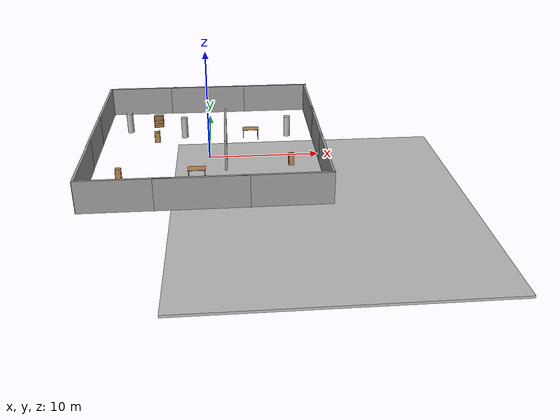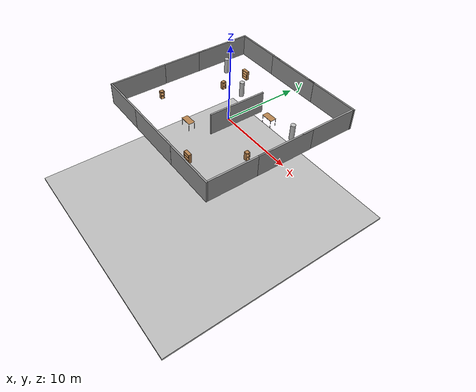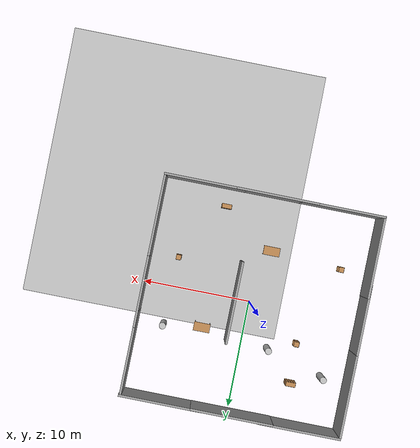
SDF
<sdf version="1.6">
 <world name="default">
  <light name="sun" type="directional">
   <cast_shadows>0</cast_shadows>
   <pose>0 0 10 0 -0 0</pose>
   <diffuse>0.8 0.8 0.8 1</diffuse>
   <specular>0.1 0.1 0.1 1</specular>
   <attenuation>
    <range>1000</range>
    <constant>0.9</constant>
    <linear>0.01</linear>
    <quadratic>0.001</quadratic>
   </attenuation>
   <direction>-0.5 0.5 -1</direction>
  </light>
  <model name="mud_box">
   <static>1</static>
   <link name="link">
    <collision name="collision"><geometry><box><size>90 75 0.2</size></box></geometry></collision>
    <visual name="visual_1">
     <pose>-2 2.5 0 0 -0 0</pose>
     <cast_shadows>0</cast_shadows>
     <geometry><box><size>24 25 0.2</size></box></geometry>
     <material>
      <script>
       <uri>model://mud_box/materials/scripts</uri>
       <uri>model://mud_box/materials/textures</uri>
       <name>vrc/mud</name>
      </script>
     </material>
    </visual>
   </link>
   <pose>11 -12 -0.1 0 -0 0</pose>
  </model>
  <gravity>0 0 -9.8</gravity>
  <magnetic_field>6e-06 2.3e-05 -4.2e-05</magnetic_field>
  <atmosphere type="adiabatic"/>
  <physics name="default_physics" default="0" type="ode">
   <max_step_size>0.001</max_step_size>
   <real_time_factor>1</real_time_factor>
   <real_time_update_rate>1000</real_time_update_rate>
  </physics>
  <scene><ambient>0.4 0.4 0.4 1</ambient><background>0.7 0.7 0.7 1</background><shadows>0</shadows></scene>
  <spherical_coordinates>
   <surface_model>EARTH_WGS84</surface_model>
   <latitude_deg>0</latitude_deg>
   <longitude_deg>0</longitude_deg>
   <elevation>0</elevation>
   <heading_deg>0</heading_deg>
  </spherical_coordinates>
  <model name="NamedLocations">
   <static>1</static>
   <link name="DefaultStart"><pose>8.5 0 0 0 -0 3.14</pose></link>
  </model>
  <model name="grey_wall">
   <static>1</static>
   <link name="link">
    <pose>0 0 1.4 0 -0 0</pose>
    <collision name="collision"><geometry><box><size>7.5 0.2 2.8</size></box></geometry></collision>
    <visual name="visual">
     <cast_shadows>0</cast_shadows>
     <geometry><box><size>7.5 0.2 2.8</size></box></geometry>
     <material>
      <script>
       <uri>model://grey_wall/materials/scripts</uri>
       <uri>model://grey_wall/materials/textures</uri>
       <name>vrc/grey_wall</name>
      </script>
     </material>
    </visual>
   </link>
   <pose>-0.430951 -10.0176 0.45 0 -0 0</pose>
  </model>
  <model name="grey_wall_0">
   <static>1</static>
   <link name="link">
    <pose>0 0 1.4 0 -0 0</pose>
    <collision name="collision"><geometry><box><size>7.5 0.2 2.8</size></box></geometry></collision>
    <visual name="visual">
     <cast_shadows>0</cast_shadows>
     <geometry><box><size>7.5 0.2 2.8</size></box></geometry>
     <material>
      <script>
       <uri>model://grey_wall/materials/scripts</uri>
       <uri>model://grey_wall/materials/textures</uri>
       <name>vrc/grey_wall</name>
      </script>
     </material>
    </visual>
   </link>
   <pose>-6.43801 -10.0068 0.45 0 -0 0</pose>
  </model>
  <model name="grey_wall_1">
   <static>1</static>
   <link name="link">
    <pose>0 0 1.4 0 -0 0</pose>
    <collision name="collision"><geometry><box><size>7.5 0.2 2.8</size></box></geometry></collision>
    <visual name="visual">
     <cast_shadows>0</cast_shadows>
     <geometry><box><size>7.5 0.2 2.8</size></box></geometry>
     <material>
      <script>
       <uri>model://grey_wall/materials/scripts</uri>
       <uri>model://grey_wall/materials/textures</uri>
       <name>vrc/grey_wall</name>
      </script>
     </material>
    </visual>
   </link>
   <pose>-0.187528 10.1006 0.45 0 -0 0</pose>
  </model>
  <model name="grey_wall_2">
   <static>1</static>
   <link name="link">
    <pose>0 0 1.4 0 -0 0</pose>
    <collision name="collision"><geometry><box><size>7.5 0.2 2.8</size></box></geometry></collision>
    <visual name="visual">
     <cast_shadows>0</cast_shadows>
     <geometry><box><size>7.5 0.2 2.8</size></box></geometry>
     <material>
      <script>
       <uri>model://grey_wall/materials/scripts</uri>
       <uri>model://grey_wall/materials/textures</uri>
       <name>vrc/grey_wall</name>
      </script>
     </material>
    </visual>
   </link>
   <pose>-6.34448 10.1286 0.45 0 -0 0</pose>
  </model>
  <model name="grey_wall_3">
   <static>1</static>
   <link name="link">
    <pose>0 0 1.4 0 -0 0</pose>
    <collision name="collision"><geometry><box><size>7.5 0.2 2.8</size></box></geometry></collision>
    <visual name="visual">
     <cast_shadows>0</cast_shadows>
     <geometry><box><size>7.5 0.2 2.8</size></box></geometry>
     <material>
      <script>
       <uri>model://grey_wall/materials/scripts</uri>
       <uri>model://grey_wall/materials/textures</uri>
       <name>vrc/grey_wall</name>
      </script>
     </material>
    </visual>
   </link>
   <pose>-10.0924 -6.35537 0.45 0 0 -1.57741</pose>
  </model>
  <model name="grey_wall_3_clone">
   <static>1</static>
   <link name="link">
    <pose>0 0 1.4 0 -0 0</pose>
    <collision name="collision"><geometry><box><size>7.5 0.2 2.8</size></box></geometry></collision>
    <visual name="visual">
     <cast_shadows>0</cast_shadows>
     <geometry><box><size>7.5 0.2 2.8</size></box></geometry>
     <material>
      <script>
       <uri>model://grey_wall/materials/scripts</uri>
       <uri>model://grey_wall/materials/textures</uri>
       <name>vrc/grey_wall</name>
      </script>
     </material>
    </visual>
   </link>
   <pose>-10.0385 6.29221 0.45 0 0 -1.57741</pose>
  </model>
  <model name="grey_wall_3_clone_0">
   <static>1</static>
   <link name="link">
    <pose>0 0 1.4 0 -0 0</pose>
    <collision name="collision"><geometry><box><size>7.5 0.2 2.8</size></box></geometry></collision>
    <visual name="visual">
     <cast_shadows>0</cast_shadows>
     <geometry><box><size>7.5 0.2 2.8</size></box></geometry>
     <material>
      <script>
       <uri>model://grey_wall/materials/scripts</uri>
       <uri>model://grey_wall/materials/textures</uri>
       <name>vrc/grey_wall</name>
      </script>
     </material>
    </visual>
   </link>
   <pose>-10.0852 -0.090618 0.45 0 0 -1.57741</pose>
  </model>
  <model name="grey_wall_clone">
   <static>1</static>
   <link name="link">
    <pose>0 0 1.4 0 -0 0</pose>
    <collision name="collision"><geometry><box><size>7.5 0.2 2.8</size></box></geometry></collision>
    <visual name="visual">
     <cast_shadows>0</cast_shadows>
     <geometry><box><size>7.5 0.2 2.8</size></box></geometry>
     <material>
      <script>
       <uri>model://grey_wall/materials/scripts</uri>
       <uri>model://grey_wall/materials/textures</uri>
       <name>vrc/grey_wall</name>
      </script>
     </material>
    </visual>
   </link>
   <pose>6.15839 -10.0125 0.45 0 -0 0</pose>
  </model>
  <model name="grey_wall_3_clone_1">
   <static>1</static>
   <link name="link">
    <pose>0 0 1.4 0 -0 0</pose>
    <collision name="collision"><geometry><box><size>7.5 0.2 2.8</size></box></geometry></collision>
    <visual name="visual">
     <cast_shadows>0</cast_shadows>
     <geometry><box><size>7.5 0.2 2.8</size></box></geometry>
     <material>
      <script>
       <uri>model://grey_wall/materials/scripts</uri>
       <uri>model://grey_wall/materials/textures</uri>
       <name>vrc/grey_wall</name>
      </script>
     </material>
    </visual>
   </link>
   <pose>9.81082 -6.30361 0.45 0 0 -1.57741</pose>
  </model>
  <model name="grey_wall_3_clone_2">
   <static>1</static>
   <link name="link">
    <pose>0 0 1.4 0 -0 0</pose>
    <collision name="collision"><geometry><box><size>7.5 0.2 2.8</size></box></geometry></collision>
    <visual name="visual">
     <cast_shadows>0</cast_shadows>
     <geometry><box><size>7.5 0.2 2.8</size></box></geometry>
     <material>
      <script>
       <uri>model://grey_wall/materials/scripts</uri>
       <uri>model://grey_wall/materials/textures</uri>
       <name>vrc/grey_wall</name>
      </script>
     </material>
    </visual>
   </link>
   <pose>9.85875 0.188279 0.45 0 0 -1.57741</pose>
  </model>
  <model name="grey_wall_3_clone_3">
   <static>1</static>
   <link name="link">
    <pose>0 0 1.4 0 -0 0</pose>
    <collision name="collision"><geometry><box><size>7.5 0.2 2.8</size></box></geometry></collision>
    <visual name="visual">
     <cast_shadows>0</cast_shadows>
     <geometry><box><size>7.5 0.2 2.8</size></box></geometry>
     <material>
      <script>
       <uri>model://grey_wall/materials/scripts</uri>
       <uri>model://grey_wall/materials/textures</uri>
       <name>vrc/grey_wall</name>
      </script>
     </material>
    </visual>
   </link>
   <pose>9.88561 6.25818 0.45 0 0 -1.57741</pose>
  </model>
  <model name="grey_wall_1_clone">
   <static>1</static>
   <link name="link">
    <pose>0 0 1.4 0 -0 0</pose>
    <collision name="collision"><geometry><box><size>7.5 0.2 2.8</size></box></geometry></collision>
    <visual name="visual">
     <cast_shadows>0</cast_shadows>
     <geometry><box><size>7.5 0.2 2.8</size></box></geometry>
     <material>
      <script>
       <uri>model://grey_wall/materials/scripts</uri>
       <uri>model://grey_wall/materials/textures</uri>
       <name>vrc/grey_wall</name>
      </script>
     </material>
    </visual>
   </link>
   <pose>6.32176 10.1148 0.45 0 -0 0</pose>
  </model>
  <model name="grey_wall_3_clone_0_clone">
   <static>1</static>
   <link name="link">
    <pose>0 0 1.4 0 -0 0</pose>
    <collision name="collision"><geometry><box><size>7.5 0.2 2.8</size></box></geometry></collision>
    <visual name="visual">
     <cast_shadows>0</cast_shadows>
     <geometry><box><size>7.5 0.2 2.8</size></box></geometry>
     <material>
      <script>
       <uri>model://grey_wall/materials/scripts</uri>
       <uri>model://grey_wall/materials/textures</uri>
       <name>vrc/grey_wall</name>
      </script>
     </material>
    </visual>
   </link>
   <pose>1.52165 0.080496 0.45 0 0 -1.57741</pose>
  </model>
  <model name="cabinet">
   <static>1</static>
   <link name="cabinet_bottom_plate">
    <inertial>
     <pose>0 0 -1 0 -0 0</pose>
     <inertia><ixx>2.05</ixx><ixy>0</ixy><ixz>0</ixz><iyy>2.05</iyy><iyz>0</iyz><izz>2.05</izz></inertia>
     <mass>25</mass>
    </inertial>
    <collision name="cabinet_bottom_plate_geom">
     <pose>0 0 0.01 0 -0 0</pose>
     <geometry><box><size>0.45 0.45 0.02</size></box></geometry>
    </collision>
    <visual name="cabinet_bottom_plate_geom_visual">
     <pose>0 0 0.01 0 -0 0</pose>
     <geometry><box><size>0.45 0.45 0.02</size></box></geometry>
     <material>
      <script><uri>file://media/materials/scripts/gazebo.material</uri><name>Gazebo/Wood</name></script>
     </material>
    </visual>
    <collision name="cabinet_bottom_plate_geom_cabinet_back_plate">
     <pose>0.235 0 0.51 0 -0 0</pose>
     <geometry><box><size>0.02 0.45 1.02</size></box></geometry>
    </collision>
    <visual name="cabinet_bottom_plate_geom_cabinet_back_plate_visual">
     <pose>0.235 0 0.51 0 -0 0</pose>
     <geometry><box><size>0.02 0.45 1.02</size></box></geometry>
     <material>
      <script><uri>file://media/materials/scripts/gazebo.material</uri><name>Gazebo/Wood</name></script>
     </material>
    </visual>
    <collision name="cabinet_bottom_plate_geom_cabinet_left_plate">
     <pose>0 0.235 0.51 0 -0 0</pose>
     <geometry><box><size>0.45 0.02 1.02</size></box></geometry>
    </collision>
    <visual name="cabinet_bottom_plate_geom_cabinet_left_plate_visual">
     <pose>0 0.235 0.51 0 -0 0</pose>
     <geometry><box><size>0.45 0.02 1.02</size></box></geometry>
     <material>
      <script><uri>file://media/materials/scripts/gazebo.material</uri><name>Gazebo/Wood</name></script>
     </material>
    </visual>
    <collision name="cabinet_bottom_plate_geom_cabinet_middle_plate">
     <pose>0 0 0.51 0 -0 0</pose>
     <geometry><box><size>0.45 0.45 0.02</size></box></geometry>
    </collision>
    <visual name="cabinet_bottom_plate_geom_cabinet_middle_plate_visual">
     <pose>0 0 0.51 0 -0 0</pose>
     <geometry><box><size>0.45 0.45 0.02</size></box></geometry>
     <material>
      <script><uri>file://media/materials/scripts/gazebo.material</uri><name>Gazebo/Wood</name></script>
     </material>
    </visual>
    <collision name="cabinet_bottom_plate_geom_cabinet_right_plate">
     <pose>0 -0.235 0.51 0 -0 0</pose>
     <geometry><box><size>0.45 0.02 1.02</size></box></geometry>
    </collision>
    <visual name="cabinet_bottom_plate_geom_cabinet_right_plate_visual">
     <pose>0 -0.235 0.51 0 -0 0</pose>
     <geometry><box><size>0.45 0.02 1.02</size></box></geometry>
     <material>
      <script><uri>file://media/materials/scripts/gazebo.material</uri><name>Gazebo/Wood</name></script>
     </material>
    </visual>
    <collision name="cabinet_bottom_plate_geom_cabinet_top_plate">
     <pose>0 0 1.01 0 -0 0</pose>
     <geometry><box><size>0.45 0.45 0.02</size></box></geometry>
    </collision>
    <visual name="cabinet_bottom_plate_geom_cabinet_top_plate_visual">
     <pose>0 0 1.01 0 -0 0</pose>
     <geometry><box><size>0.45 0.45 0.02</size></box></geometry>
     <material>
      <script><uri>file://media/materials/scripts/gazebo.material</uri><name>Gazebo/Wood</name></script>
     </material>
    </visual>
   </link>
   <pose>-4.91761 2.85891 0.45 0 -0 3.14</pose>
  </model>
  <model name="bookshelf">
   <static>1</static>
   <link name="link">
    <inertial><mass>1</mass></inertial>
    <collision name="back">
     <pose>0 0.005 0.6 0 -0 0</pose>
     <geometry><box><size>0.9 0.01 1.2</size></box></geometry>
    </collision>
    <visual name="visual1">
     <pose>0 0.005 0.6 0 -0 0</pose>
     <geometry><box><size>0.9 0.01 1.2</size></box></geometry>
     <material>
      <script><uri>file://media/materials/scripts/gazebo.material</uri><name>Gazebo/Wood</name></script>
     </material>
    </visual>
    <collision name="left_side">
     <pose>0.45 -0.195 0.6 0 -0 0</pose>
     <geometry><box><size>0.02 0.4 1.2</size></box></geometry>
    </collision>
    <visual name="visual2">
     <pose>0.45 -0.195 0.6 0 -0 0</pose>
     <geometry><box><size>0.02 0.4 1.2</size></box></geometry>
     <material>
      <script><uri>file://media/materials/scripts/gazebo.material</uri><name>Gazebo/Wood</name></script>
     </material>
    </visual>
    <collision name="right_side">
     <pose>-0.45 -0.195 0.6 0 -0 0</pose>
     <geometry><box><size>0.02 0.4 1.2</size></box></geometry>
    </collision>
    <visual name="visual3">
     <pose>-0.45 -0.195 0.6 0 -0 0</pose>
     <geometry><box><size>0.02 0.4 1.2</size></box></geometry>
     <material>
      <script><uri>file://media/materials/scripts/gazebo.material</uri><name>Gazebo/Wood</name></script>
     </material>
    </visual>
    <collision name="bottom">
     <pose>0 -0.195 0.03 0 -0 0</pose>
     <geometry><box><size>0.88 0.4 0.06</size></box></geometry>
    </collision>
    <visual name="visual4">
     <pose>0 -0.195 0.03 0 -0 0</pose>
     <geometry><box><size>0.88 0.4 0.06</size></box></geometry>
     <material>
      <script><uri>file://media/materials/scripts/gazebo.material</uri><name>Gazebo/Wood</name></script>
     </material>
    </visual>
    <collision name="top">
     <pose>0 -0.195 1.19 0 -0 0</pose>
     <geometry><box><size>0.88 0.4 0.02</size></box></geometry>
    </collision>
    <visual name="visual5">
     <pose>0 -0.195 1.19 0 -0 0</pose>
     <geometry><box><size>0.88 0.4 0.02</size></box></geometry>
     <material>
      <script><uri>file://media/materials/scripts/gazebo.material</uri><name>Gazebo/Wood</name></script>
     </material>
    </visual>
    <collision name="low_shelf">
     <pose>0 -0.195 0.43 0 -0 0</pose>
     <geometry><box><size>0.88 0.4 0.02</size></box></geometry>
    </collision>
    <visual name="visual6">
     <pose>0 -0.195 0.43 0 -0 0</pose>
     <geometry><box><size>0.88 0.4 0.02</size></box></geometry>
     <material>
      <script><uri>file://media/materials/scripts/gazebo.material</uri><name>Gazebo/Wood</name></script>
     </material>
    </visual>
    <collision name="high_shelf">
     <pose>0 -0.195 0.8 0 -0 0</pose>
     <geometry><box><size>0.88 0.4 0.02</size></box></geometry>
    </collision>
    <visual name="visual7">
     <pose>0 -0.195 0.8 0 -0 0</pose>
     <geometry><box><size>0.88 0.4 0.02</size></box></geometry>
     <material>
      <script><uri>file://media/materials/scripts/gazebo.material</uri><name>Gazebo/Wood</name></script>
     </material>
    </visual>
   </link>
   <pose>3.81369 -8.10094 0.45 0 -0 0</pose>
  </model>
  <model name="table">
   <static>1</static>
   <link name="link">
    <collision name="surface">
     <pose>0 0 1 0 -0 0</pose>
     <geometry><box><size>1.5 0.8 0.03</size></box></geometry>
     <surface><friction><ode><mu>0.6</mu><mu2>0.6</mu2></ode></friction></surface>
    </collision>
    <visual name="visual1">
     <pose>0 0 1 0 -0 0</pose>
     <geometry><box><size>1.5 0.8 0.03</size></box></geometry>
     <material>
      <script><uri>file://media/materials/scripts/gazebo.material</uri><name>Gazebo/Wood</name></script>
     </material>
    </visual>
    <collision name="front_left_leg">
     <pose>0.68 0.38 0.5 0 -0 0</pose>
     <geometry><cylinder><radius>0.02</radius><length>1</length></cylinder></geometry>
    </collision>
    <visual name="front_left_leg">
     <pose>0.68 0.38 0.5 0 -0 0</pose>
     <geometry><cylinder><radius>0.02</radius><length>1</length></cylinder></geometry>
     <material>
      <script>
       <uri>model://brick_box_0.5x0.5x3/materials/scripts</uri>
       <uri>model://brick_box_0.5x0.5x3/materials/textures</uri>
       <name>BrickBox/Diffuse</name>
      </script>
     </material>
    </visual>
    <collision name="front_right_leg">
     <pose>0.68 -0.38 0.5 0 -0 0</pose>
     <geometry><cylinder><radius>0.02</radius><length>1</length></cylinder></geometry>
    </collision>
    <visual name="front_right_leg">
     <pose>0.68 -0.38 0.5 0 -0 0</pose>
     <geometry><cylinder><radius>0.02</radius><length>1</length></cylinder></geometry>
     <material>
      <script>
       <uri>model://brick_box_0.5x0.5x3/materials/scripts</uri>
       <uri>model://brick_box_0.5x0.5x3/materials/textures</uri>
       <name>BrickBox/Diffuse</name>
      </script>
     </material>
    </visual>
    <collision name="back_right_leg">
     <pose>-0.68 -0.38 0.5 0 -0 0</pose>
     <geometry><cylinder><radius>0.02</radius><length>1</length></cylinder></geometry>
    </collision>
    <visual name="back_right_leg">
     <pose>-0.68 -0.38 0.5 0 -0 0</pose>
     <geometry><cylinder><radius>0.02</radius><length>1</length></cylinder></geometry>
     <material>
      <script>
       <uri>model://brick_box_0.5x0.5x3/materials/scripts</uri>
       <uri>model://brick_box_0.5x0.5x3/materials/textures</uri>
       <name>BrickBox/Diffuse</name>
      </script>
     </material>
    </visual>
    <collision name="back_left_leg">
     <pose>-0.68 0.38 0.5 0 -0 0</pose>
     <geometry><cylinder><radius>0.02</radius><length>1</length></cylinder></geometry>
    </collision>
    <visual name="back_left_leg">
     <pose>-0.68 0.38 0.5 0 -0 0</pose>
     <geometry><cylinder><radius>0.02</radius><length>1</length></cylinder></geometry>
     <material>
      <script>
       <uri>model://brick_box_0.5x0.5x3/materials/scripts</uri>
       <uri>model://brick_box_0.5x0.5x3/materials/textures</uri>
       <name>BrickBox/Diffuse</name>
      </script>
     </material>
    </visual>
   </link>
   <pose>3.90628 3.0115 0.45 0 -0 0</pose>
  </model>
  <model name="bookshelf_0">
   <static>1</static>
   <link name="link">
    <inertial><mass>1</mass></inertial>
    <collision name="back">
     <pose>0 0.005 0.6 0 -0 0</pose>
     <geometry><box><size>0.9 0.01 1.2</size></box></geometry>
    </collision>
    <visual name="visual1">
     <pose>0 0.005 0.6 0 -0 0</pose>
     <geometry><box><size>0.9 0.01 1.2</size></box></geometry>
     <material>
      <script><uri>file://media/materials/scripts/gazebo.material</uri><name>Gazebo/Wood</name></script>
     </material>
    </visual>
    <collision name="left_side">
     <pose>0.45 -0.195 0.6 0 -0 0</pose>
     <geometry><box><size>0.02 0.4 1.2</size></box></geometry>
    </collision>
    <visual name="visual2">
     <pose>0.45 -0.195 0.6 0 -0 0</pose>
     <geometry><box><size>0.02 0.4 1.2</size></box></geometry>
     <material>
      <script><uri>file://media/materials/scripts/gazebo.material</uri><name>Gazebo/Wood</name></script>
     </material>
    </visual>
    <collision name="right_side">
     <pose>-0.45 -0.195 0.6 0 -0 0</pose>
     <geometry><box><size>0.02 0.4 1.2</size></box></geometry>
    </collision>
    <visual name="visual3">
     <pose>-0.45 -0.195 0.6 0 -0 0</pose>
     <geometry><box><size>0.02 0.4 1.2</size></box></geometry>
     <material>
      <script><uri>file://media/materials/scripts/gazebo.material</uri><name>Gazebo/Wood</name></script>
     </material>
    </visual>
    <collision name="bottom">
     <pose>0 -0.195 0.03 0 -0 0</pose>
     <geometry><box><size>0.88 0.4 0.06</size></box></geometry>
    </collision>
    <visual name="visual4">
     <pose>0 -0.195 0.03 0 -0 0</pose>
     <geometry><box><size>0.88 0.4 0.06</size></box></geometry>
     <material>
      <script><uri>file://media/materials/scripts/gazebo.material</uri><name>Gazebo/Wood</name></script>
     </material>
    </visual>
    <collision name="top">
     <pose>0 -0.195 1.19 0 -0 0</pose>
     <geometry><box><size>0.88 0.4 0.02</size></box></geometry>
    </collision>
    <visual name="visual5">
     <pose>0 -0.195 1.19 0 -0 0</pose>
     <geometry><box><size>0.88 0.4 0.02</size></box></geometry>
     <material>
      <script><uri>file://media/materials/scripts/gazebo.material</uri><name>Gazebo/Wood</name></script>
     </material>
    </visual>
    <collision name="low_shelf">
     <pose>0 -0.195 0.43 0 -0 0</pose>
     <geometry><box><size>0.88 0.4 0.02</size></box></geometry>
    </collision>
    <visual name="visual6">
     <pose>0 -0.195 0.43 0 -0 0</pose>
     <geometry><box><size>0.88 0.4 0.02</size></box></geometry>
     <material>
      <script><uri>file://media/materials/scripts/gazebo.material</uri><name>Gazebo/Wood</name></script>
     </material>
    </visual>
    <collision name="high_shelf">
     <pose>0 -0.195 0.8 0 -0 0</pose>
     <geometry><box><size>0.88 0.4 0.02</size></box></geometry>
    </collision>
    <visual name="visual7">
     <pose>0 -0.195 0.8 0 -0 0</pose>
     <geometry><box><size>0.88 0.4 0.02</size></box></geometry>
     <material>
      <script><uri>file://media/materials/scripts/gazebo.material</uri><name>Gazebo/Wood</name></script>
     </material>
    </visual>
   </link>
   <pose>-5.05955 6.72058 0.45 0 -0 0</pose>
  </model>
  <model name="cabinet_0">
   <static>1</static>
   <link name="cabinet_bottom_plate">
    <inertial>
     <pose>0 0 -1 0 -0 0</pose>
     <inertia><ixx>2.05</ixx><ixy>0</ixy><ixz>0</ixz><iyy>2.05</iyy><iyz>0</iyz><izz>2.05</izz></inertia>
     <mass>25</mass>
    </inertial>
    <collision name="cabinet_bottom_plate_geom">
     <pose>0 0 0.01 0 -0 0</pose>
     <geometry><box><size>0.45 0.45 0.02</size></box></geometry>
    </collision>
    <visual name="cabinet_bottom_plate_geom_visual">
     <pose>0 0 0.01 0 -0 0</pose>
     <geometry><box><size>0.45 0.45 0.02</size></box></geometry>
     <material>
      <script><uri>file://media/materials/scripts/gazebo.material</uri><name>Gazebo/Wood</name></script>
     </material>
    </visual>
    <collision name="cabinet_bottom_plate_geom_cabinet_back_plate">
     <pose>0.235 0 0.51 0 -0 0</pose>
     <geometry><box><size>0.02 0.45 1.02</size></box></geometry>
    </collision>
    <visual name="cabinet_bottom_plate_geom_cabinet_back_plate_visual">
     <pose>0.235 0 0.51 0 -0 0</pose>
     <geometry><box><size>0.02 0.45 1.02</size></box></geometry>
     <material>
      <script><uri>file://media/materials/scripts/gazebo.material</uri><name>Gazebo/Wood</name></script>
     </material>
    </visual>
    <collision name="cabinet_bottom_plate_geom_cabinet_left_plate">
     <pose>0 0.235 0.51 0 -0 0</pose>
     <geometry><box><size>0.45 0.02 1.02</size></box></geometry>
    </collision>
    <visual name="cabinet_bottom_plate_geom_cabinet_left_plate_visual">
     <pose>0 0.235 0.51 0 -0 0</pose>
     <geometry><box><size>0.45 0.02 1.02</size></box></geometry>
     <material>
      <script><uri>file://media/materials/scripts/gazebo.material</uri><name>Gazebo/Wood</name></script>
     </material>
    </visual>
    <collision name="cabinet_bottom_plate_geom_cabinet_middle_plate">
     <pose>0 0 0.51 0 -0 0</pose>
     <geometry><box><size>0.45 0.45 0.02</size></box></geometry>
    </collision>
    <visual name="cabinet_bottom_plate_geom_cabinet_middle_plate_visual">
     <pose>0 0 0.51 0 -0 0</pose>
     <geometry><box><size>0.45 0.45 0.02</size></box></geometry>
     <material>
      <script><uri>file://media/materials/scripts/gazebo.material</uri><name>Gazebo/Wood</name></script>
     </material>
    </visual>
    <collision name="cabinet_bottom_plate_geom_cabinet_right_plate">
     <pose>0 -0.235 0.51 0 -0 0</pose>
     <geometry><box><size>0.45 0.02 1.02</size></box></geometry>
    </collision>
    <visual name="cabinet_bottom_plate_geom_cabinet_right_plate_visual">
     <pose>0 -0.235 0.51 0 -0 0</pose>
     <geometry><box><size>0.45 0.02 1.02</size></box></geometry>
     <material>
      <script><uri>file://media/materials/scripts/gazebo.material</uri><name>Gazebo/Wood</name></script>
     </material>
    </visual>
    <collision name="cabinet_bottom_plate_geom_cabinet_top_plate">
     <pose>0 0 1.01 0 -0 0</pose>
     <geometry><box><size>0.45 0.45 0.02</size></box></geometry>
    </collision>
    <visual name="cabinet_bottom_plate_geom_cabinet_top_plate_visual">
     <pose>0 0 1.01 0 -0 0</pose>
     <geometry><box><size>0.45 0.45 0.02</size></box></geometry>
     <material>
      <script><uri>file://media/materials/scripts/gazebo.material</uri><name>Gazebo/Wood</name></script>
     </material>
    </visual>
   </link>
   <pose>-7.60906 -4.6363 0.45 0 -0 3.14</pose>
  </model>
  <model name="cylinder_gf_1">
   <static>1</static>
   <pose>-2.36883 3.8194 0.45 0 -0 0</pose>
   <link name="link">
    <pose>0 0 1 0 -0 0</pose>
    <inertial>
     <mass>100</mass>
     <inertia>
      <ixx>0.166667</ixx>
      <ixy>0</ixy>
      <ixz>0</ixz>
      <iyy>0.166667</iyy>
      <iyz>0</iyz>
      <izz>0.166667</izz>
     </inertia>
    </inertial>
    <collision name="collision">
     <geometry><cylinder><radius>0.3</radius><length>2</length></cylinder></geometry>
    </collision>
    <visual name="visual">
     <geometry><cylinder><radius>0.3</radius><length>2</length></cylinder></geometry>
     <material>
      <script>
       <uri>model://brick_box_0.5x0.5x3/materials/scripts</uri>
       <uri>model://brick_box_0.5x0.5x3/materials/textures</uri>
       <name>BrickBox/Diffuse</name>
      </script>
     </material>
    </visual>
   </link>
  </model>
  <model name="cylinder_gf">
   <static>1</static>
   <pose>7.43366 3.42375 0.45 0 -0 0</pose>
   <link name="link">
    <pose>0 0 1 0 -0 0</pose>
    <inertial>
     <mass>100</mass>
     <inertia>
      <ixx>0.166667</ixx>
      <ixy>0</ixy>
      <ixz>0</ixz>
      <iyy>0.166667</iyy>
      <iyz>0</iyz>
      <izz>0.166667</izz>
     </inertia>
    </inertial>
    <collision name="collision">
     <geometry><cylinder><radius>0.3</radius><length>2</length></cylinder></geometry>
    </collision>
    <visual name="visual">
     <geometry><cylinder><radius>0.3</radius><length>2</length></cylinder></geometry>
     <material>
      <script>
       <uri>model://brick_box_0.5x0.5x3/materials/scripts</uri>
       <uri>model://brick_box_0.5x0.5x3/materials/textures</uri>
       <name>BrickBox/Diffuse</name>
      </script>
     </material>
    </visual>
   </link>
  </model>
  <model name="cylinder_gf_0">
   <static>1</static>
   <pose>-7.71707 5.42121 0.45 0 -0 0</pose>
   <link name="link">
    <pose>0 0 1 0 -0 0</pose>
    <inertial>
     <mass>100</mass>
     <inertia>
      <ixx>0.166667</ixx>
      <ixy>0</ixy>
      <ixz>0</ixz>
      <iyy>0.166667</iyy>
      <iyz>0</iyz>
      <izz>0.166667</izz>
     </inertia>
    </inertial>
    <collision name="collision">
     <geometry><cylinder><radius>0.3</radius><length>2</length></cylinder></geometry>
    </collision>
    <visual name="visual">
     <geometry><cylinder><radius>0.3</radius><length>2</length></cylinder></geometry>
     <material>
      <script>
       <uri>model://brick_box_0.5x0.5x3/materials/scripts</uri>
       <uri>model://brick_box_0.5x0.5x3/materials/textures</uri>
       <name>BrickBox/Diffuse</name>
      </script>
     </material>
    </visual>
   </link>
  </model>
  <model name="table_0">
   <static>1</static>
   <link name="link">
    <collision name="surface">
     <pose>0 0 1 0 -0 0</pose>
     <geometry><box><size>1.5 0.8 0.03</size></box></geometry>
     <surface><friction><ode><mu>0.6</mu><mu2>0.6</mu2></ode></friction></surface>
    </collision>
    <visual name="visual1">
     <pose>0 0 1 0 -0 0</pose>
     <geometry><box><size>1.5 0.8 0.03</size></box></geometry>
     <material>
      <script><uri>file://media/materials/scripts/gazebo.material</uri><name>Gazebo/Wood</name></script>
     </material>
    </visual>
    <collision name="front_left_leg">
     <pose>0.68 0.38 0.5 0 -0 0</pose>
     <geometry><cylinder><radius>0.02</radius><length>1</length></cylinder></geometry>
    </collision>
    <visual name="front_left_leg">
     <pose>0.68 0.38 0.5 0 -0 0</pose>
     <geometry><cylinder><radius>0.02</radius><length>1</length></cylinder></geometry>
     <material>
      <script>
       <uri>model://brick_box_0.5x0.5x3/materials/scripts</uri>
       <uri>model://brick_box_0.5x0.5x3/materials/textures</uri>
       <name>BrickBox/Diffuse</name>
      </script>
     </material>
    </visual>
    <collision name="front_right_leg">
     <pose>0.68 -0.38 0.5 0 -0 0</pose>
     <geometry><cylinder><radius>0.02</radius><length>1</length></cylinder></geometry>
    </collision>
    <visual name="front_right_leg">
     <pose>0.68 -0.38 0.5 0 -0 0</pose>
     <geometry><cylinder><radius>0.02</radius><length>1</length></cylinder></geometry>
     <material>
      <script>
       <uri>model://brick_box_0.5x0.5x3/materials/scripts</uri>
       <uri>model://brick_box_0.5x0.5x3/materials/textures</uri>
       <name>BrickBox/Diffuse</name>
      </script>
     </material>
    </visual>
    <collision name="back_right_leg">
     <pose>-0.68 -0.38 0.5 0 -0 0</pose>
     <geometry><cylinder><radius>0.02</radius><length>1</length></cylinder></geometry>
    </collision>
    <visual name="back_right_leg">
     <pose>-0.68 -0.38 0.5 0 -0 0</pose>
     <geometry><cylinder><radius>0.02</radius><length>1</length></cylinder></geometry>
     <material>
      <script>
       <uri>model://brick_box_0.5x0.5x3/materials/scripts</uri>
       <uri>model://brick_box_0.5x0.5x3/materials/textures</uri>
       <name>BrickBox/Diffuse</name>
      </script>
     </material>
    </visual>
    <collision name="back_left_leg">
     <pose>-0.68 0.38 0.5 0 -0 0</pose>
     <geometry><cylinder><radius>0.02</radius><length>1</length></cylinder></geometry>
    </collision>
    <visual name="back_left_leg">
     <pose>-0.68 0.38 0.5 0 -0 0</pose>
     <geometry><cylinder><radius>0.02</radius><length>1</length></cylinder></geometry>
     <material>
      <script>
       <uri>model://brick_box_0.5x0.5x3/materials/scripts</uri>
       <uri>model://brick_box_0.5x0.5x3/materials/textures</uri>
       <name>BrickBox/Diffuse</name>
      </script>
     </material>
    </visual>
   </link>
   <pose>-1.01465 -5.05884 0.45 0 -0 0</pose>
  </model>
  <model name="cabinet_clone">
   <static>1</static>
   <link name="cabinet_bottom_plate">
    <inertial>
     <pose>0 0 -1 0 -0 0</pose>
     <inertia><ixx>2.05</ixx><ixy>0</ixy><ixz>0</ixz><iyy>2.05</iyy><iyz>0</iyz><izz>2.05</izz></inertia>
     <mass>25</mass>
    </inertial>
    <collision name="cabinet_bottom_plate_geom">
     <pose>0 0 0.01 0 -0 0</pose>
     <geometry><box><size>0.45 0.45 0.02</size></box></geometry>
    </collision>
    <visual name="cabinet_bottom_plate_geom_visual">
     <pose>0 0 0.01 0 -0 0</pose>
     <geometry><box><size>0.45 0.45 0.02</size></box></geometry>
     <material>
      <script><uri>file://media/materials/scripts/gazebo.material</uri><name>Gazebo/Wood</name></script>
     </material>
    </visual>
    <collision name="cabinet_bottom_plate_geom_cabinet_back_plate">
     <pose>0.235 0 0.51 0 -0 0</pose>
     <geometry><box><size>0.02 0.45 1.02</size></box></geometry>
    </collision>
    <visual name="cabinet_bottom_plate_geom_cabinet_back_plate_visual">
     <pose>0.235 0 0.51 0 -0 0</pose>
     <geometry><box><size>0.02 0.45 1.02</size></box></geometry>
     <material>
      <script><uri>file://media/materials/scripts/gazebo.material</uri><name>Gazebo/Wood</name></script>
     </material>
    </visual>
    <collision name="cabinet_bottom_plate_geom_cabinet_left_plate">
     <pose>0 0.235 0.51 0 -0 0</pose>
     <geometry><box><size>0.45 0.02 1.02</size></box></geometry>
    </collision>
    <visual name="cabinet_bottom_plate_geom_cabinet_left_plate_visual">
     <pose>0 0.235 0.51 0 -0 0</pose>
     <geometry><box><size>0.45 0.02 1.02</size></box></geometry>
     <material>
      <script><uri>file://media/materials/scripts/gazebo.material</uri><name>Gazebo/Wood</name></script>
     </material>
    </visual>
    <collision name="cabinet_bottom_plate_geom_cabinet_middle_plate">
     <pose>0 0 0.51 0 -0 0</pose>
     <geometry><box><size>0.45 0.45 0.02</size></box></geometry>
    </collision>
    <visual name="cabinet_bottom_plate_geom_cabinet_middle_plate_visual">
     <pose>0 0 0.51 0 -0 0</pose>
     <geometry><box><size>0.45 0.45 0.02</size></box></geometry>
     <material>
      <script><uri>file://media/materials/scripts/gazebo.material</uri><name>Gazebo/Wood</name></script>
     </material>
    </visual>
    <collision name="cabinet_bottom_plate_geom_cabinet_right_plate">
     <pose>0 -0.235 0.51 0 -0 0</pose>
     <geometry><box><size>0.45 0.02 1.02</size></box></geometry>
    </collision>
    <visual name="cabinet_bottom_plate_geom_cabinet_right_plate_visual">
     <pose>0 -0.235 0.51 0 -0 0</pose>
     <geometry><box><size>0.45 0.02 1.02</size></box></geometry>
     <material>
      <script><uri>file://media/materials/scripts/gazebo.material</uri><name>Gazebo/Wood</name></script>
     </material>
    </visual>
    <collision name="cabinet_bottom_plate_geom_cabinet_top_plate">
     <pose>0 0 1.01 0 -0 0</pose>
     <geometry><box><size>0.45 0.45 0.02</size></box></geometry>
    </collision>
    <visual name="cabinet_bottom_plate_geom_cabinet_top_plate_visual">
     <pose>0 0 1.01 0 -0 0</pose>
     <geometry><box><size>0.45 0.45 0.02</size></box></geometry>
     <material>
      <script><uri>file://media/materials/scripts/gazebo.material</uri><name>Gazebo/Wood</name></script>
     </material>
    </visual>
   </link>
   <pose>7.23254 -2.86873 0.45 0 -0 3.14</pose>
  </model>
 </world>
</sdf>
